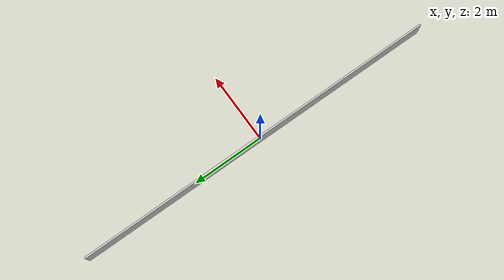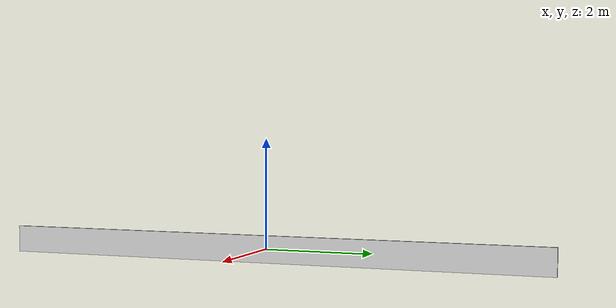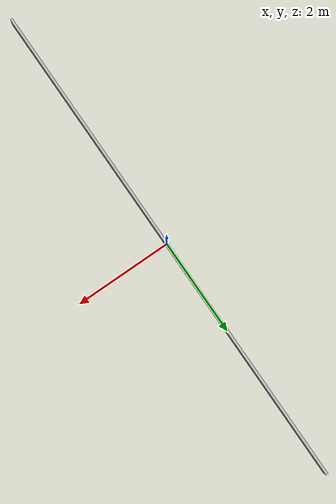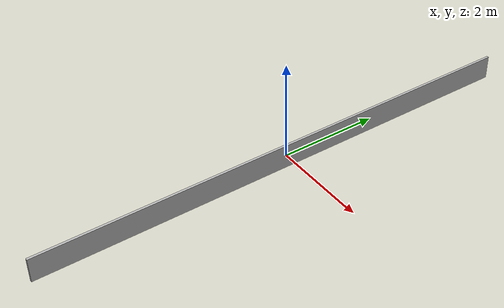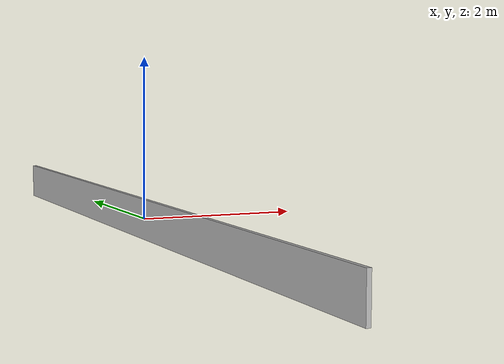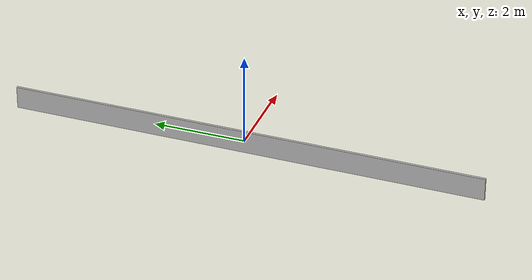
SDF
<?xml version="1.0"?>
<sdf version="1.6">
    <model name="warehouse_divider">
	   <static>true</static>
      <link name="warehouse_divider_link">

        <visual name="visual">
          <geometry>
            <mesh><uri>model://warehouse_divider/meshes/warehouse_divider.dae</uri></mesh>
          </geometry>
        </visual>

        <collision name="collision">
          <pose>0 0 0 0 0 0</pose>
          <geometry>
          <box>
            <size>0.05 10.4 0.5</size>
          </box>
           </geometry>
        </collision>

        <sensor name='sensor_contact' type='contact'>
          <contact>
            <collision>collision</collision>
            <topic>/world/eyantra_world/time</topic>
          </contact>
          <always_on>1</always_on>
          <update_rate>5</update_rate>
        </sensor>

      </link>
    </model>
</sdf>
